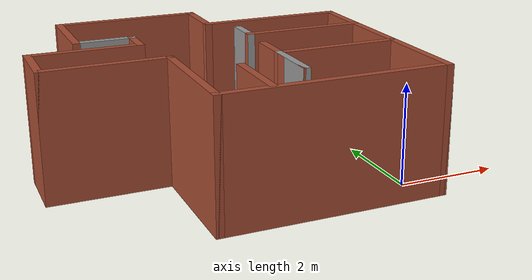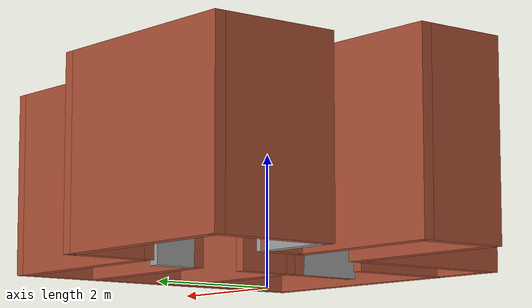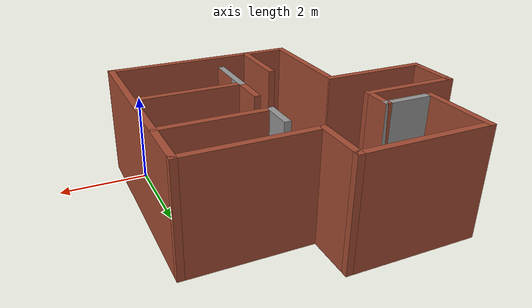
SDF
<?xml version='1.0'?>
<sdf version='1.7'>
  <model name='robot_world'>
    <pose>-2.92 2.2 0 0 -0 0</pose>
    <link name='Wall_14'>
      <collision name='Wall_14_Collision'>
        <geometry>
          <box>
            <size>4.75 0.15 2.5</size>
          </box>
        </geometry>
        <pose>0 0 1.25 0 -0 0</pose>
      </collision>
      <visual name='Wall_14_Visual'>
        <pose>0 0 1.25 0 -0 0</pose>
        <geometry>
          <box>
            <size>4.75 0.15 2.5</size>
          </box>
        </geometry>
        <material>
          <script>
            <uri>file://media/materials/scripts/gazebo.material</uri>
            <name>Gazebo/Bricks</name>
          </script>
          <ambient>1 1 1 1</ambient>
        </material>
        <meta>
          <layer>0</layer>
        </meta>
      </visual>
      <pose>3.35 -0.55 0 0 -0 1.5708</pose>
    </link>
    <link name='Wall_15'>
      <collision name='Wall_15_Collision'>
        <geometry>
          <box>
            <size>3 0.15 2.5</size>
          </box>
        </geometry>
        <pose>0 0 1.25 0 -0 0</pose>
      </collision>
      <visual name='Wall_15_Visual'>
        <pose>0 0 1.25 0 -0 0</pose>
        <geometry>
          <box>
            <size>3 0.15 2.5</size>
          </box>
        </geometry>
        <material>
          <script>
            <uri>file://media/materials/scripts/gazebo.material</uri>
            <name>Gazebo/Bricks</name>
          </script>
          <ambient>1 1 1 1</ambient>
        </material>
        <meta>
          <layer>0</layer>
        </meta>
      </visual>
      <pose>1.925 1.75 0 0 -0 3.14159</pose>
    </link>
    <link name='Wall_16'>
      <collision name='Wall_16_Collision'>
        <geometry>
          <box>
            <size>1.25 0.15 2.5</size>
          </box>
        </geometry>
        <pose>0 0 1.25 0 -0 0</pose>
      </collision>
      <visual name='Wall_16_Visual'>
        <pose>0 0 1.25 0 -0 0</pose>
        <geometry>
          <box>
            <size>1.25 0.15 2.5</size>
          </box>
        </geometry>
        <material>
          <script>
            <uri>file://media/materials/scripts/gazebo.material</uri>
            <name>Gazebo/Bricks</name>
          </script>
          <ambient>1 1 1 1</ambient>
        </material>
        <meta>
          <layer>0</layer>
        </meta>
      </visual>
      <pose>0.5 2.3 0 0 -0 1.5708</pose>
    </link>
    <link name='Wall_17'>
      <collision name='Wall_17_Collision'>
        <geometry>
          <box>
            <size>3 0.15 2.5</size>
          </box>
        </geometry>
        <pose>0 0 1.25 0 -0 0</pose>
      </collision>
      <visual name='Wall_17_Visual'>
        <pose>0 0 1.25 0 -0 0</pose>
        <geometry>
          <box>
            <size>3 0.15 2.5</size>
          </box>
        </geometry>
        <material>
          <script>
            <uri>file://media/materials/scripts/gazebo.material</uri>
            <name>Gazebo/Bricks</name>
          </script>
          <ambient>1 1 1 1</ambient>
        </material>
        <meta>
          <layer>0</layer>
        </meta>
      </visual>
      <pose>-0.925 2.85 0 0 -0 3.14159</pose>
    </link>
    <link name='Wall_18'>
      <collision name='Wall_18_Collision'>
        <geometry>
          <box>
            <size>1.75 0.15 2.5</size>
          </box>
        </geometry>
        <pose>0 0 1.25 0 -0 0</pose>
      </collision>
      <visual name='Wall_18_Visual'>
        <pose>0 0 1.25 0 -0 0</pose>
        <geometry>
          <box>
            <size>1.75 0.15 2.5</size>
          </box>
        </geometry>
        <material>
          <script>
            <uri>file://media/materials/scripts/gazebo.material</uri>
            <name>Gazebo/Bricks</name>
          </script>
          <ambient>1 1 1 1</ambient>
        </material>
        <meta>
          <layer>0</layer>
        </meta>
      </visual>
      <pose>-2.35 2.05 0 0 -0 -1.5708</pose>
    </link>
    <link name='Wall_19'>
      <collision name='Wall_19_Collision'>
        <geometry>
          <box>
            <size>1.25 0.15 2.5</size>
          </box>
        </geometry>
        <pose>0 0 1.25 0 -0 0</pose>
      </collision>
      <visual name='Wall_19_Visual'>
        <pose>0 0 1.25 0 -0 0</pose>
        <geometry>
          <box>
            <size>1.25 0.15 2.5</size>
          </box>
        </geometry>
        <material>
          <script>
            <uri>file://media/materials/scripts/gazebo.material</uri>
            <name>Gazebo/Grey</name>
          </script>
          <ambient>1 1 1 1</ambient>
        </material>
        <meta>
          <layer>0</layer>
        </meta>
      </visual>
      <pose>-1.8 1.25 0 0 -0 0</pose>
    </link>
    <link name='Wall_2'>
      <collision name='Wall_2_Collision'>
        <geometry>
          <box>
            <size>2.5 0.15 2.5</size>
          </box>
        </geometry>
        <pose>0 0 1.25 0 -0 0</pose>
      </collision>
      <visual name='Wall_2_Visual'>
        <pose>0 0 1.25 0 -0 0</pose>
        <geometry>
          <box>
            <size>2.5 0.15 2.5</size>
          </box>
        </geometry>
        <material>
          <script>
            <uri>file://media/materials/scripts/gazebo.material</uri>
            <name>Gazebo/Bricks</name>
          </script>
          <ambient>1 1 1 1</ambient>
        </material>
        <meta>
          <layer>0</layer>
        </meta>
      </visual>
      <pose>-1 -1.675 0 0 -0 -1.5708</pose>
    </link>
    <link name='Wall_20'>
      <collision name='Wall_20_Collision'>
        <geometry>
          <box>
            <size>0.75 0.15 2.5</size>
          </box>
        </geometry>
        <pose>0 0 1.25 0 -0 0</pose>
      </collision>
      <visual name='Wall_20_Visual'>
        <pose>0 0 1.25 0 -0 0</pose>
        <geometry>
          <box>
            <size>0.75 0.15 2.5</size>
          </box>
        </geometry>
        <material>
          <script>
            <uri>file://media/materials/scripts/gazebo.material</uri>
            <name>Gazebo/Bricks</name>
          </script>
          <ambient>1 1 1 1</ambient>
        </material>
        <meta>
          <layer>0</layer>
        </meta>
      </visual>
      <pose>-1.25 0.95 0 0 -0 -1.5708</pose>
    </link>
    <link name='Wall_21'>
      <collision name='Wall_21_Collision'>
        <geometry>
          <box>
            <size>2.25 0.15 2.5</size>
          </box>
        </geometry>
        <pose>0 0 1.25 0 -0 0</pose>
      </collision>
      <visual name='Wall_21_Visual'>
        <pose>0 0 1.25 0 -0 0</pose>
        <geometry>
          <box>
            <size>2.25 0.15 2.5</size>
          </box>
        </geometry>
        <material>
          <script>
            <uri>file://media/materials/scripts/gazebo.material</uri>
            <name>Gazebo/Bricks</name>
          </script>
          <ambient>1 1 1 1</ambient>
        </material>
        <meta>
          <layer>0</layer>
        </meta>
      </visual>
      <pose>-2.3 0.65 0 0 -0 3.14159</pose>
    </link>
    <link name='Wall_22'>
      <collision name='Wall_22_Collision'>
        <geometry>
          <box>
            <size>1.25 0.15 2.5</size>
          </box>
        </geometry>
        <pose>0 0 1.25 0 -0 0</pose>
      </collision>
      <visual name='Wall_22_Visual'>
        <pose>0 0 1.25 0 -0 0</pose>
        <geometry>
          <box>
            <size>1.25 0.15 2.5</size>
          </box>
        </geometry>
        <material>
          <script>
            <uri>file://media/materials/scripts/gazebo.material</uri>
            <name>Gazebo/Bricks</name>
          </script>
          <ambient>1 1 1 1</ambient>
        </material>
        <meta>
          <layer>0</layer>
        </meta>
      </visual>
      <pose>-3.35 0.1 0 0 -0 -1.5708</pose>
    </link>
    <link name='Wall_23'>
      <collision name='Wall_23_Collision'>
        <geometry>
          <box>
            <size>2.5 0.15 2.5</size>
          </box>
        </geometry>
        <pose>0 0 1.25 0 -0 0</pose>
      </collision>
      <visual name='Wall_23_Visual'>
        <pose>0 0 1.25 0 -0 0</pose>
        <geometry>
          <box>
            <size>2.5 0.15 2.5</size>
          </box>
        </geometry>
        <material>
          <script>
            <uri>file://media/materials/scripts/gazebo.material</uri>
            <name>Gazebo/Bricks</name>
          </script>
          <ambient>1 1 1 1</ambient>
        </material>
        <meta>
          <layer>0</layer>
        </meta>
      </visual>
      <pose>-2.175 -0.45 0 0 -0 0</pose>
    </link>
    <link name='Wall_26'>
      <collision name='Wall_26_Collision'>
        <geometry>
          <box>
            <size>2.5 0.15 2.5</size>
          </box>
        </geometry>
        <pose>0 0 1.25 0 -0 0</pose>
      </collision>
      <visual name='Wall_26_Visual'>
        <pose>0 0 1.25 0 -0 0</pose>
        <geometry>
          <box>
            <size>2.5 0.15 2.5</size>
          </box>
        </geometry>
        <material>
          <script>
            <uri>file://media/materials/scripts/gazebo.material</uri>
            <name>Gazebo/Bricks</name>
          </script>
          <ambient>1 1 1 1</ambient>
        </material>
        <meta>
          <layer>0</layer>
        </meta>
      </visual>
      <pose>2.16138 0.603148 0 0 -0 3.14159</pose>
    </link>
    <link name='Wall_27'>
      <collision name='Wall_27_Collision'>
        <geometry>
          <box>
            <size>0.75 0.15 2.5</size>
          </box>
        </geometry>
        <pose>0 0 1.25 0 -0 0</pose>
      </collision>
      <visual name='Wall_27_Visual'>
        <pose>0 0 1.25 0 -0 0</pose>
        <geometry>
          <box>
            <size>0.75 0.15 2.5</size>
          </box>
        </geometry>
        <material>
          <script>
            <uri>file://media/materials/scripts/gazebo.material</uri>
            <name>Gazebo/Grey</name>
          </script>
          <ambient>1 1 1 1</ambient>
        </material>
        <meta>
          <layer>0</layer>
        </meta>
      </visual>
      <pose>0.986383 0.903148 0 0 -0 1.5708</pose>
    </link>
    <link name='Wall_3'>
      <collision name='Wall_3_Collision'>
        <geometry>
          <box>
            <size>4.5 0.15 2.5</size>
          </box>
        </geometry>
        <pose>0 0 1.25 0 -0 0</pose>
      </collision>
      <visual name='Wall_3_Visual'>
        <pose>0 0 1.25 0 -0 0</pose>
        <geometry>
          <box>
            <size>4.5 0.15 2.5</size>
          </box>
        </geometry>
        <material>
          <script>
            <uri>file://media/materials/scripts/gazebo.material</uri>
            <name>Gazebo/Bricks</name>
          </script>
          <ambient>1 1 1 1</ambient>
        </material>
        <meta>
          <layer>0</layer>
        </meta>
      </visual>
      <pose>1.175 -2.85 0 0 -0 0</pose>
    </link>
    <link name='Wall_32'>
      <collision name='Wall_32_Collision'>
        <geometry>
          <box>
            <size>2.5 0.15 2.5</size>
          </box>
        </geometry>
        <pose>0 0 1.25 0 -0 0</pose>
      </collision>
      <visual name='Wall_32_Visual'>
        <pose>0 0 1.25 0 -0 0</pose>
        <geometry>
          <box>
            <size>2.5 0.15 2.5</size>
          </box>
        </geometry>
        <material>
          <script>
            <uri>file://media/materials/scripts/gazebo.material</uri>
            <name>Gazebo/Bricks</name>
          </script>
          <ambient>1 1 1 1</ambient>
        </material>
        <meta>
          <layer>0</layer>
        </meta>
      </visual>
      <pose>2.12746 -0.934508 0 0 -0 3.14159</pose>
    </link>
    <link name='Wall_33'>
      <collision name='Wall_33_Collision'>
        <geometry>
          <box>
            <size>1.25 0.15 2.5</size>
          </box>
        </geometry>
        <pose>0 0 1.25 0 -0 0</pose>
      </collision>
      <visual name='Wall_33_Visual'>
        <pose>0 0 1.25 0 -0 0</pose>
        <geometry>
          <box>
            <size>1.25 0.15 2.5</size>
          </box>
        </geometry>
        <material>
          <script>
            <uri>file://media/materials/scripts/gazebo.material</uri>
            <name>Gazebo/Grey</name>
          </script>
          <ambient>1 1 1 1</ambient>
        </material>
        <meta>
          <layer>0</layer>
        </meta>
      </visual>
      <pose>0.952465 -1.48451 0 0 -0 -1.5708</pose>
    </link>
    <link name='Wall_34'>
      <collision name='Wall_34_Collision'>
        <geometry>
          <box>
            <size>2 0.15 2.5</size>
          </box>
        </geometry>
        <pose>0 0 1.25 0 -0 0</pose>
      </collision>
      <visual name='Wall_34_Visual'>
        <pose>0 0 1.25 0 -0 0</pose>
        <geometry>
          <box>
            <size>2 0.15 2.5</size>
          </box>
        </geometry>
        <material>
          <script>
            <uri>file://media/materials/scripts/gazebo.material</uri>
            <name>Gazebo/Bricks</name>
          </script>
          <ambient>1 1 1 1</ambient>
        </material>
        <meta>
          <layer>0</layer>
        </meta>
      </visual>
      <pose>0.952465 -1.10951 0 0 -0 1.5708</pose>
    </link>
    <link name='Wall_36'>
      <collision name='Wall_36_Collision'>
        <geometry>
          <box>
            <size>1.5 0.15 2.5</size>
          </box>
        </geometry>
        <pose>0 0 1.25 0 -0 0</pose>
      </collision>
      <visual name='Wall_36_Visual'>
        <pose>0 0 1.25 0 -0 0</pose>
        <geometry>
          <box>
            <size>1.5 0.15 2.5</size>
          </box>
        </geometry>
        <material>
          <script>
            <uri>file://media/materials/scripts/gazebo.material</uri>
            <name>Gazebo/Bricks</name>
          </script>
          <ambient>1 1 1 1</ambient>
        </material>
        <meta>
          <layer>0</layer>
        </meta>
      </visual>
      <pose>0.001027 -2.11374 0 0 -0 1.5708</pose>
    </link>
    <static>1</static>
  </model>
</sdf>
